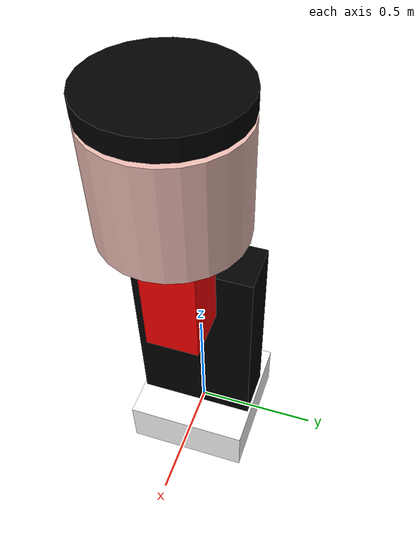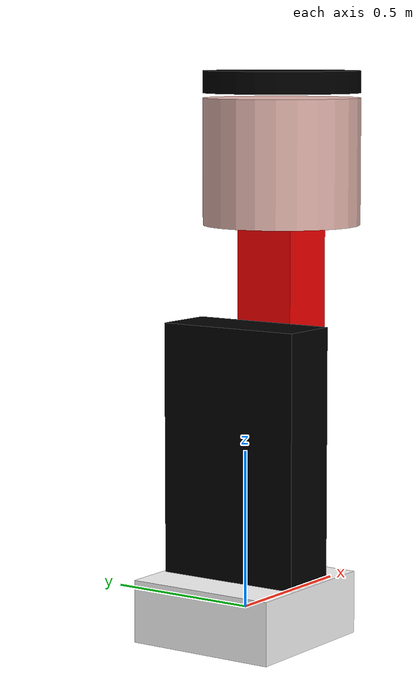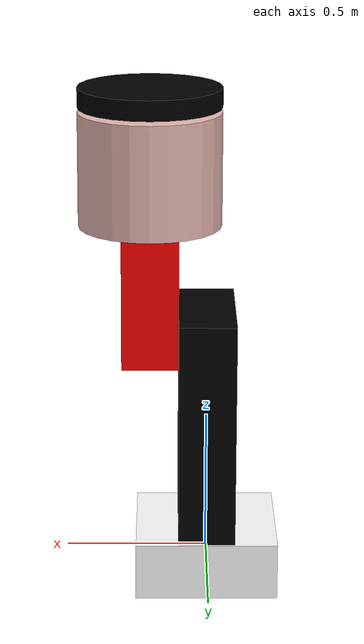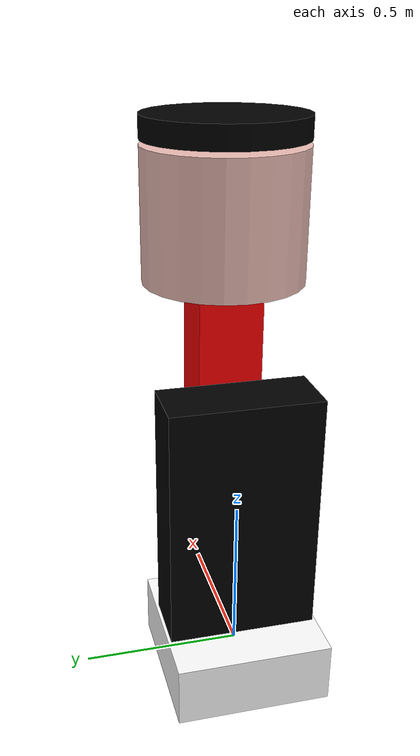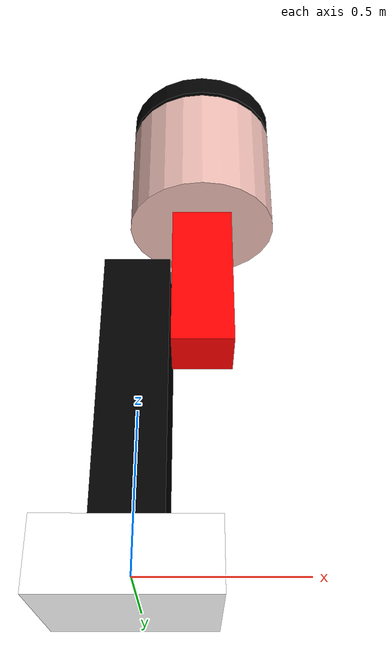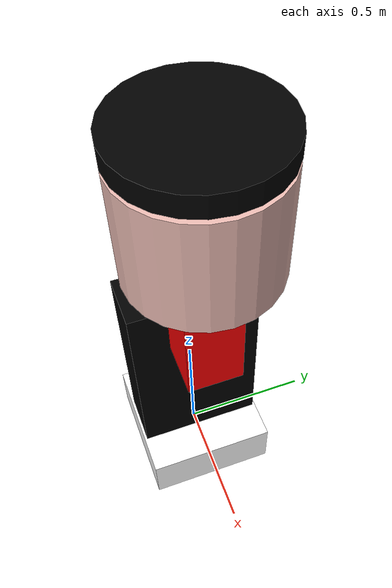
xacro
<?xml version="1.0"?>
<robot name="waiterobot" xmlns:xacro="http://ros.org/wiki/xacro">
    <xacro:property name="width" value="0.2" />
    <xacro:property name="head_radius" value="0.25" />
    <xacro:property name="head_len" value="0.4" />
    <xacro:property name="hair_len" value="0.07" />
    <xacro:property name="base_thickness" value="0.2" />
    <xacro:property name="base_len" value="0.5" />
    <xacro:property name="body_height" value="0.6" />
    <xacro:property name="legs_height" value="1.0" />
    <xacro:property name="pi" value="3.14159265" />

    <material name="red">
        <color rgba="1 0 0 1"/>
    </material>

    <material name="skin_color">
        <color rgba="0.925 0.737 0.706 1"/>
    </material>

    <material name="black">
        <color rgba="0 0 0 1"/>
    </material>

    <material name="white">
        <color rgba="1 1 1 1"/>
    </material>

    <xacro:macro name="default_inertial" params="mass">
        <inertial>
        <mass value="${mass}" />
        <inertia ixx="1.0" ixy="0.0" ixz="0.0" iyy="1.0" iyz="0.0" izz="1.0" />
        </inertial>
    </xacro:macro>

    <link name="base_link">
      <visual>
        <origin rpy="0.0 0.0 0.0" xyz="0.0 0.0 0.0"/>
        <geometry>
          <box size="${base_len} ${base_len} ${base_thickness}"/>
        </geometry>
        <material name="white"/>
      </visual>
    </link>

    <joint name="base_to_legs" type="revolute">
      <axis xyz="0 0 1"/>
      <limit lower="0.0" upper="${pi/4.0}" effort="50.0" velocity="0.5"/>
      <parent link="base_link"/>
      <child link="legs_link"/>
    </joint>

    <link name="legs_link">
      <visual>
        <origin rpy="0.0 0.0 0.0" xyz="0.0 0.0 ${base_thickness+0.2}"/>
        <geometry>
          <box size="${width} ${width*2.4} ${legs_height}"/>
        </geometry>
        <material name="black"/>
      </visual>
      <collision>
        <geometry>
          <box size="${width} ${width*2.4} ${legs_height}"/>
        </geometry>
      </collision>
      <xacro:default_inertial mass="10"/>
    </link>

    <joint name="legs_to_body" type="revolute">
      <axis xyz="1 0 0"/>
      <limit lower="0.0" upper="${pi/16.0}" effort="50.0" velocity="0.5"/>
      <parent link="legs_link"/>
      <child link="body_link"/>
    </joint>

    <link name="body_link">
      <visual>
        <origin xyz="0.2 0.0 ${legs_height}" rpy="0.0 0.0 0.0"/>
        <geometry>
          <box size="${width} ${width} ${body_height}"/>
        </geometry>
        <material name="red"/>
      </visual>
      <collision>
        <geometry>
          <box size="${width} ${width} ${body_height}"/>
        </geometry>
      </collision>
      <xacro:default_inertial mass="10"/>
    </link>

    <joint name="body_to_head" type="fixed">
      <parent link="body_link"/>
      <child link="head_link"/>
      <origin xyz="0 0 0"/>
    </joint>

    <link name="head_link">
      <visual>
        <origin xyz="0.2 0.0 ${legs_height+body_height-0.2}" rpy="0.0 0.0 0.0"/>
        <geometry>
          <cylinder length="${head_len}" radius="${head_radius}"/>
        </geometry>
        <material name="skin_color"/>
      </visual>
      <collision>
        <geometry>
          <cylinder length="${head_len}" radius="${head_radius}"/>
        </geometry>
      </collision>
      <xacro:default_inertial mass="4"/>
    </link>

    <joint name="head_to_hair" type="fixed">
      <parent link="head_link"/>
      <child link="hair_link"/>
      <origin xyz="0 0 0"/>
    </joint>

    <link name="hair_link">
      <visual>
        <origin xyz="0.2 0.0 ${legs_height+body_height+0.05}" rpy="0.0 0.0 0.0"/>
        <geometry>
          <cylinder length="${hair_len}" radius="${head_radius}"/>
        </geometry>
        <material name="black"/>
      </visual>
      <collision>
        <geometry>
          <box size="${width} ${width} ${body_height}"/>
        </geometry>
      </collision>
      <xacro:default_inertial mass="4"/>
    </link>
</robot>
